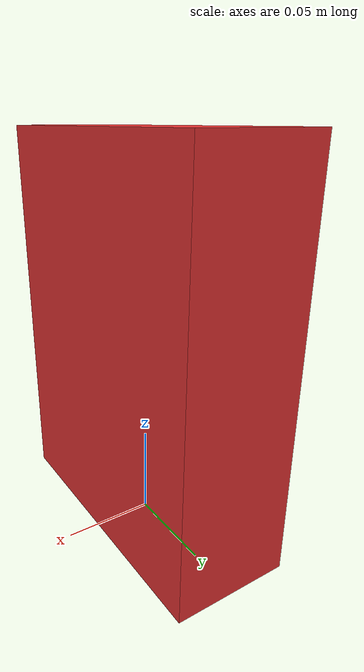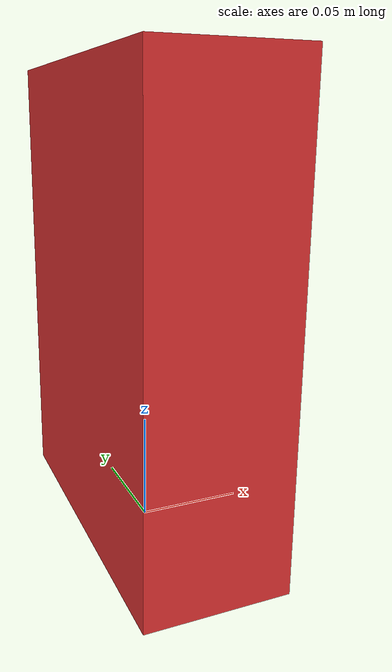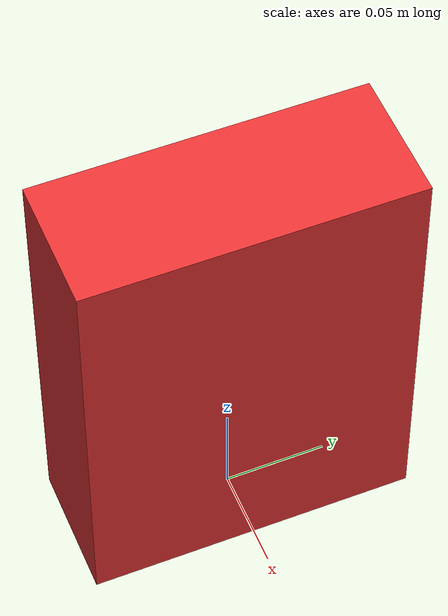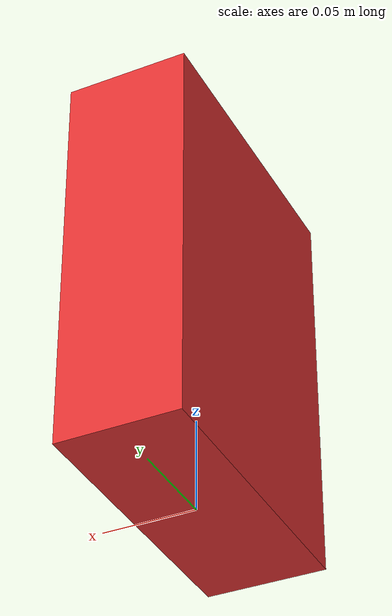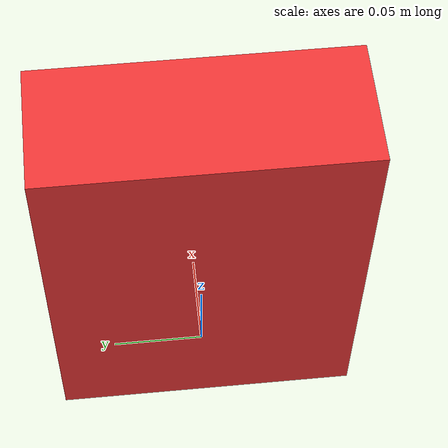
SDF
<sdf version="1.6">
    <model name="cheezits">
        <allow_auto_disable>true</allow_auto_disable>
        <link name="link">
            <kinematic>true</kinematic>
            <pose>0 0 0.1075 0 0 0 0</pose>
            <inertial>
                <pose>0 0 -0.08 0 0 0 0</pose>
                <inertia>
                    <ixx>0.03541666666666667</ixx>
                    <ixy>0</ixy>
                    <ixz>0</ixz>
                    <iyy>0.04166666666666667</iyy>
                    <iyz>0</iyz>
                    <izz>0.010416666666666668</izz>
                </inertia>
                <mass>10.0</mass>
            </inertial>
            <visual name="visual">
                <geometry>
                    <box>
                        <size>0.065 0.16 0.215</size>
                    </box>
                </geometry>
                <material>
                <ambient>0.9 0.2 0.2 1.0</ambient>
                <diffuse>0.9 0.2 0.2 1.0</diffuse>
                </material>
            </visual>
            <collision name="collision">
                <geometry>
                    <box>
                        <size>0.065 0.16 0.215</size>
                    </box>
                </geometry>
                <surface>
                    <friction>
                        <ode>
                            <mu>1.0</mu>
                            <mu2>1.0</mu2>
                        </ode>
                    </friction>
                    <contact>
                        <ode>
                            <kp>1e15</kp>
                            <kd>1e12</kd>
                        </ode>
                    </contact>
                </surface>
            </collision>
        </link>
    </model>
</sdf>
